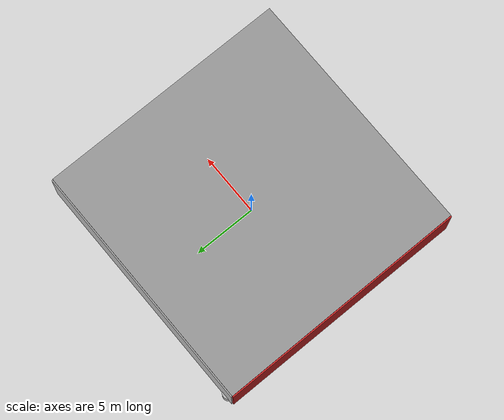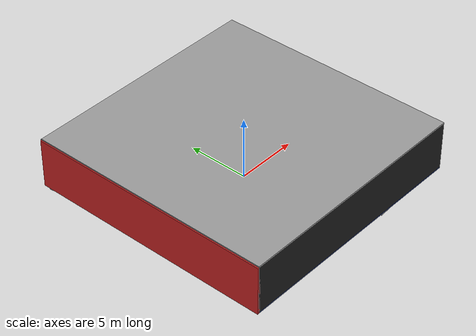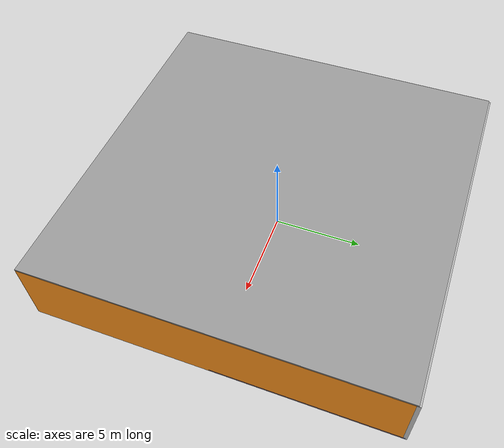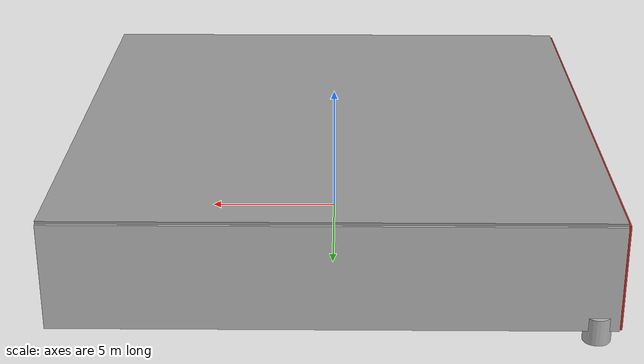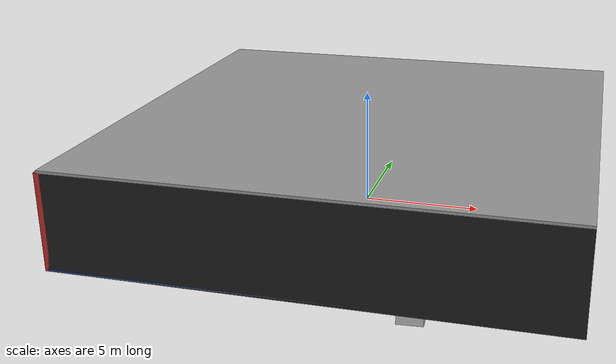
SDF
<sdf version="1.4">
 <world name="default">
  <physics type="ode">
   <max_step_size>0.001</max_step_size>
   <real_time_factor>1</real_time_factor>
   <real_time_update_rate>1000</real_time_update_rate>
   <gravity>0 0 -9.8</gravity>
  </physics>
  <scene><ambient>0.4 0.4 0.4 1</ambient><background>0.7 0.7 0.7 1</background><shadows>1</shadows></scene>
  <model name="Surrounding">
   <static>1</static>
   <link name="Ceiling">
    <collision name="Ceiling_Collision"><geometry><box><size>20 20 0.1</size></box></geometry></collision>
    <visual name="Ceiling_Visual">
     <geometry><box><size>20 20 0.1</size></box></geometry>
     <material>
      <script><uri>file://media/materials/scripts/gazebo.material</uri><name>Gazebo/GreyGradientSky</name></script>
     </material>
    </visual>
    <pose>0 0 4.05 0 0 0</pose>
   </link>
   <link name="Wall_South">
    <collision name="Wall_South_Collision">
     <geometry><box><size>20 0 4</size></box></geometry>
     <pose>0 0 2 0 -0 0</pose>
    </collision>
    <visual name="Wall_South_Visual">
     <pose>0 0 2 0 -0 0</pose>
     <geometry><box><size>20 0 4</size></box></geometry>
     <material>
      <script><uri>file://media/materials/scripts/gazebo.material</uri><name>Gazebo/FlatBlack</name></script>
     </material>
    </visual>
    <velocity_decay><linear>0</linear><angular>0</angular></velocity_decay>
    <pose>0 -10 0 0 -0 0</pose>
   </link>
   <link name="Wall_East">
    <collision name="Wall_21_Collision">
     <geometry><box><size>20 0 4</size></box></geometry>
     <pose>0 0 2 0 -0 0</pose>
    </collision>
    <visual name="Wall_21_Visual">
     <pose>0 0 2 0 -0 0</pose>
     <geometry><box><size>20 0 4</size></box></geometry>
     <material>
      <script><uri>file://media/materials/scripts/gazebo.material</uri><name>Gazebo/Orange</name></script>
     </material>
    </visual>
    <velocity_decay><linear>0</linear><angular>0</angular></velocity_decay>
    <pose>10 0 0 0 -0 1.5708</pose>
   </link>
   <link name="Wall_North">
    <collision name="Wall_22_Collision">
     <geometry><box><size>20 0.2 4</size></box></geometry>
     <pose>0 0 2 0 -0 0</pose>
    </collision>
    <visual name="Wall_22_Visual">
     <pose>0 0 2 0 -0 0</pose>
     <geometry><box><size>20 0.2 4</size></box></geometry>
     <material>
      <script><uri>file://media/materials/scripts/gazebo.material</uri><name>Gazebo/Pioneer2Body</name></script>
     </material>
    </visual>
    <velocity_decay><linear>0</linear><angular>0</angular></velocity_decay>
    <pose>0 10 0 0 -0 0</pose>
   </link>
   <link name="Wall_West">
    <collision name="Wall_23_Collision">
     <geometry><box><size>20 0.2 4</size></box></geometry>
     <pose>0 0 2 0 -0 0</pose>
    </collision>
    <visual name="Wall_23_Visual">
     <pose>0 0 2 0 -0 0</pose>
     <geometry><box><size>20 0.2 4</size></box></geometry>
     <material>
      <script><uri>file://media/materials/scripts/gazebo.material</uri><name>Gazebo/RedBright</name></script>
     </material>
    </visual>
    <velocity_decay><linear>0</linear><angular>0</angular></velocity_decay>
    <pose>-10 0 0 0 0 -1.5708</pose>
   </link>
   <link name="Ground_link">
    <collision name="collision">
     <pose>0 0 .05 0 -0 0</pose>
     <geometry><box><size>20 20 0.1</size></box></geometry>
    </collision>
    <visual name="visual">
     <pose>0 0 .05 0 -0 0</pose>
     <geometry><box><size>20 20 0.1</size></box></geometry>
     <material>
      <script><uri>file://media/materials/scripts/gazebo.material</uri><name>Gazebo/BlueTransparent</name></script>
     </material>
    </visual>
   </link>
   <static>1</static>
  </model>
  <spherical_coordinates>
   <surface_model>EARTH_WGS84</surface_model>
   <latitude_deg>0</latitude_deg>
   <longitude_deg>0</longitude_deg>
   <elevation>0</elevation>
   <heading_deg>0</heading_deg>
  </spherical_coordinates>
  <light name="lightball_0" type="diffuse">
   <diffuse>0.8 0.8 0.8 1</diffuse>
   <specular>0.2 0.2 0.2 1</specular>
   <attenuation>
    <range>100</range>
    <constant>0.7</constant>
    <linear>0.01</linear>
    <quadratic>0.001</quadratic>
   </attenuation>
   <direction>-0.5 0.1 -0.9</direction>
   <pose>1.83602389895 -4.22036500529 0.866452665508 0 0 0</pose>
  </light>
  <light name="lightball_1" type="diffuse">
   <diffuse>0.8 0.8 0.8 1</diffuse>
   <specular>0.2 0.2 0.2 1</specular>
   <attenuation>
    <range>100</range>
    <constant>0.7</constant>
    <linear>0.01</linear>
    <quadratic>0.001</quadratic>
   </attenuation>
   <direction>-0.5 0.1 -0.9</direction>
   <pose>6.8049347799 -3.1728800989 1.0144068488 0 0 0</pose>
  </light>
  <light name="lightball_2" type="diffuse">
   <diffuse>0.8 0.8 0.8 1</diffuse>
   <specular>0.2 0.2 0.2 1</specular>
   <attenuation>
    <range>100</range>
    <constant>0.7</constant>
    <linear>0.01</linear>
    <quadratic>0.001</quadratic>
   </attenuation>
   <direction>-0.5 0.1 -0.9</direction>
   <pose>-3.63372789625 -6.85409655347 1.11917798863 0 0 0</pose>
  </light>
  <light name="lightball_3" type="diffuse">
   <diffuse>0.8 0.8 0.8 1</diffuse>
   <specular>0.2 0.2 0.2 1</specular>
   <attenuation>
    <range>100</range>
    <constant>0.7</constant>
    <linear>0.01</linear>
    <quadratic>0.001</quadratic>
   </attenuation>
   <direction>-0.5 0.1 -0.9</direction>
   <pose>2.25414275785 8.22353843334 1.99400013717 0 0 0</pose>
  </light>
  <light name="lightball_4" type="diffuse">
   <diffuse>0.8 0.8 0.8 1</diffuse>
   <specular>0.2 0.2 0.2 1</specular>
   <attenuation>
    <range>100</range>
    <constant>0.7</constant>
    <linear>0.01</linear>
    <quadratic>0.001</quadratic>
   </attenuation>
   <direction>-0.5 0.1 -0.9</direction>
   <pose>5.28959636121 -6.85313059019 2.42789447796 0 0 0</pose>
  </light>
  <light name="lightball_5" type="diffuse">
   <diffuse>0.8 0.8 0.8 1</diffuse>
   <specular>0.2 0.2 0.2 1</specular>
   <attenuation>
    <range>100</range>
    <constant>0.7</constant>
    <linear>0.01</linear>
    <quadratic>0.001</quadratic>
   </attenuation>
   <direction>-0.5 0.1 -0.9</direction>
   <pose>8.04692885146 -3.82142334396 3.13533496297 0 0 0</pose>
  </light>
  <light name="lightball_6" type="diffuse">
   <diffuse>0.8 0.8 0.8 1</diffuse>
   <specular>0.2 0.2 0.2 1</specular>
   <attenuation>
    <range>100</range>
    <constant>0.7</constant>
    <linear>0.01</linear>
    <quadratic>0.001</quadratic>
   </attenuation>
   <direction>-0.5 0.1 -0.9</direction>
   <pose>9.02614971009 -4.47272170579 0.586321502011 0 0 0</pose>
  </light>
  <light name="lightball_7" type="diffuse">
   <diffuse>0.8 0.8 0.8 1</diffuse>
   <specular>0.2 0.2 0.2 1</specular>
   <attenuation>
    <range>100</range>
    <constant>0.7</constant>
    <linear>0.01</linear>
    <quadratic>0.001</quadratic>
   </attenuation>
   <direction>-0.5 0.1 -0.9</direction>
   <pose>-7.2021250703 7.68652994903 1.48692625627 0 0 0</pose>
  </light>
  <light name="lightball_8" type="diffuse">
   <diffuse>0.8 0.8 0.8 1</diffuse>
   <specular>0.2 0.2 0.2 1</specular>
   <attenuation>
    <range>100</range>
    <constant>0.7</constant>
    <linear>0.01</linear>
    <quadratic>0.001</quadratic>
   </attenuation>
   <direction>-0.5 0.1 -0.9</direction>
   <pose>2.63074837136 -4.74198231062 0.879105099738 0 0 0</pose>
  </light>
  <light name="lightball_9" type="diffuse">
   <diffuse>0.8 0.8 0.8 1</diffuse>
   <specular>0.2 0.2 0.2 1</specular>
   <attenuation>
    <range>100</range>
    <constant>0.7</constant>
    <linear>0.01</linear>
    <quadratic>0.001</quadratic>
   </attenuation>
   <direction>-0.5 0.1 -0.9</direction>
   <pose>6.50649110373 2.66617480786 0.891482103969 0 0 0</pose>
  </light>
  <light name="lightball_10" type="diffuse">
   <diffuse>0.8 0.8 0.8 1</diffuse>
   <specular>0.2 0.2 0.2 1</specular>
   <attenuation>
    <range>100</range>
    <constant>0.7</constant>
    <linear>0.01</linear>
    <quadratic>0.001</quadratic>
   </attenuation>
   <direction>-0.5 0.1 -0.9</direction>
   <pose>-3.41453202803 6.94761910317 2.83268218366 0 0 0</pose>
  </light>
  <include><uri>model://cabinet</uri><pose>-7.78015577301 -1.10389031119 0 0 0 1.70304002338</pose></include>
  <include>
   <uri>model://textured_shapes</uri>
   <pose>-8.4372423203 8.52121785418 0 0 0 0.589198705548</pose>
  </include>
  <include><uri>model://cabinet</uri><pose>-1.68641837381 -2.58808726406 0 0 0 1.04872901269</pose></include>
  <include>
   <uri>model://textured_shapes</uri>
   <pose>-1.31855905869 1.05918277231 0 0 0 1.42188682404</pose>
  </include>
  <include>
   <uri>model://construction_cone</uri>
   <pose>-2.27766745426 4.73263894688 0 0 0 1.16960805237</pose>
  </include>
  <include>
   <uri>model://textured_shapes</uri>
   <pose>3.8694759367 -7.71085911115 0 0 0 0.0623246598708</pose>
  </include>
  <include>
   <uri>model://construction_cone</uri>
   <pose>4.63307400753 7.28846740659 0 0 0 0.807380771993</pose>
  </include>
 </world>
</sdf>

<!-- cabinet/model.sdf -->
<sdf version="1.5">
  <model name="cabinet">
    <static>true</static>
    <link name="cabinet_bottom_plate">
      <inertial>
        <pose>0 0 -1 0 0 0</pose>
        <inertia>
          <ixx>2.050000</ixx>
          <ixy>0</ixy>
          <ixz>0</ixz>
          <iyy>2.050000</iyy>
          <iyz>0</iyz>
          <izz>2.050000</izz>
        </inertia>
        <mass>25.000000</mass>
      </inertial>
      <collision name="cabinet_bottom_plate_geom">
        <pose>0 0 0.010000 0 0 0</pose>
        <geometry>
          <box>
            <size>0.450000 0.450000 0.020000</size>
          </box>
        </geometry>
      </collision>
      <visual name="cabinet_bottom_plate_geom_visual">
        <pose>0 0 0.010000 0 0 0</pose>
        <geometry>
          <box>
            <size>0.450000 0.450000 0.020000</size>
          </box>
        </geometry>
        <material>
          <script>
            <uri>model://media/materials/scripts/gazebo.material</uri>
            <name>Gazebo/Wood</name>
          </script>
        </material>
      </visual>
      <collision name="cabinet_bottom_plate_geom_cabinet_back_plate">
        <pose>0.235000 0 0.510000 0 0 0</pose>
        <geometry>
          <box>
            <size>0.020000 0.450000 1.020000</size>
          </box>
        </geometry>
      </collision>
      <visual name="cabinet_bottom_plate_geom_cabinet_back_plate_visual">
        <pose>0.235000 0 0.510000 0 0 0</pose>
        <geometry>
          <box>
            <size>0.020000 0.450000 1.020000</size>
          </box>
        </geometry>
        <material>
          <script>
            <uri>model://media/materials/scripts/gazebo.material</uri>
            <name>Gazebo/Wood</name>
          </script>
        </material>
      </visual>
      <collision name="cabinet_bottom_plate_geom_cabinet_left_plate">
        <pose>0 0.235000 0.510000 0 0 0</pose>
        <geometry>
          <box>
            <size>0.450000 0.020000 1.020000</size>
          </box>
        </geometry>
      </collision>
      <visual name="cabinet_bottom_plate_geom_cabinet_left_plate_visual">
        <pose>0 0.235000 0.510000 0 0 0</pose>
        <geometry>
          <box>
            <size>0.450000 0.020000 1.020000</size>
          </box>
        </geometry>
        <material>
          <script>
            <uri>model://media/materials/scripts/gazebo.material</uri>
            <name>Gazebo/Wood</name>
          </script>
        </material>
      </visual>
      <collision name="cabinet_bottom_plate_geom_cabinet_middle_plate">
        <pose>0 0 0.510000 0 0 0</pose>
        <geometry>
          <box>
            <size>0.450000 0.450000 0.020000</size>
          </box>
        </geometry>
      </collision>
      <visual name="cabinet_bottom_plate_geom_cabinet_middle_plate_visual">
        <pose>0 0 0.510000 0 0 0</pose>
        <geometry>
          <box>
            <size>0.450000 0.450000 0.020000</size>
          </box>
        </geometry>
        <material>
          <script>
            <uri>model://media/materials/scripts/gazebo.material</uri>
            <name>Gazebo/Wood</name>
          </script>
        </material>
      </visual>
      <collision name="cabinet_bottom_plate_geom_cabinet_right_plate">
        <pose>0 -0.235000 0.510000 0 0 0</pose>
        <geometry>
          <box>
            <size>0.450000 0.020000 1.020000</size>
          </box>
        </geometry>
      </collision>
      <visual name="cabinet_bottom_plate_geom_cabinet_right_plate_visual">
        <pose>0 -0.235000 0.510000 0 0 0</pose>
        <geometry>
          <box>
            <size>0.450000 0.020000 1.020000</size>
          </box>
        </geometry>
        <material>
          <script>
            <uri>model://media/materials/scripts/gazebo.material</uri>
            <name>Gazebo/Wood</name>
          </script>
        </material>
      </visual>
      <collision name="cabinet_bottom_plate_geom_cabinet_top_plate">
        <pose>0 0 1.010000 0 0 0</pose>
        <geometry>
          <box>
            <size>0.450000 0.450000 0.020000</size>
          </box>
        </geometry>
      </collision>
      <visual name="cabinet_bottom_plate_geom_cabinet_top_plate_visual">
        <pose>0 0 1.010000 0 0 0</pose>
        <geometry>
          <box>
            <size>0.450000 0.450000 0.020000</size>
          </box>
        </geometry>
        <material>
          <script>
            <uri>model://media/materials/scripts/gazebo.material</uri>
            <name>Gazebo/Wood</name>
          </script>
        </material>
      </visual>
    </link>
  </model>
</sdf>

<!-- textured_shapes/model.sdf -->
<sdf version="1.6">
  <model name="textured_shapes">
    <pose>0 0 0.5 0 0 0</pose>
    <link name="box">
      <pose>0 -1.5 0 0 0 0</pose>
      <collision name="collision">
        <geometry>
          <box>
            <size>1 1 1</size>
          </box>
        </geometry>
      </collision>
      <visual name="visual">
        <geometry>
          <box>
            <size>1 1 1</size>
          </box>
        </geometry>
        <material>
          <script>
            <uri>model://../model_source/models/textured_shapes/materials/scripts</uri>
            <uri>model://../model_source/models/textured_shapes/materials/textures</uri>
            <name>TexturedShape/Squares</name>
          </script>
        </material>
      </visual>
    </link>
    <link name="sphere">
      <collision name="collision">
        <geometry>
          <sphere>
            <radius>0.5</radius>
          </sphere>
        </geometry>
      </collision>
      <visual name="visual">
        <geometry>
          <sphere>
            <radius>0.5</radius>
          </sphere>
        </geometry>
        <material>
          <script>
            <uri>model://../model_source/models/textured_shapes/materials/scripts</uri>
            <uri>model://../model_source/models/textured_shapes/materials/textures</uri>
            <name>TexturedShape/Squares</name>
          </script>
        </material>
      </visual>
    </link>
    <link name="cylinder">
      <pose>0 1.5 0 0 0 0</pose>
      <collision name="collision">
        <geometry>
          <cylinder>
            <radius>0.5</radius>
            <length>1</length>
          </cylinder>
        </geometry>
      </collision>
      <visual name="visual">
        <geometry>
          <cylinder>
            <radius>0.5</radius>
            <length>1</length>
          </cylinder>
        </geometry>
        <material>
          <script>
            <uri>model://../model_source/models/textured_shapes/materials/scripts</uri>
            <uri>model://../model_source/models/textured_shapes/materials/textures</uri>
            <name>TexturedShape/Squares</name>
          </script>
        </material>
      </visual>
    </link>
  </model>
</sdf>

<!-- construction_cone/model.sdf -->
<sdf version="1.5">
  <model name="Construction Cone">
    <link name="link">
      <collision name="collision">
        <geometry>
          <mesh>
            <scale>10 10 10</scale>
            <uri>file://isr-testbed/construction_cone/meshes/construction_cone.dae</uri>
          </mesh>
        </geometry>
      </collision>
      <visual name="visual">
        <geometry>
          <mesh>
            <scale>10 10 10</scale>
            <uri>file://isr-testbed/construction_cone/meshes/construction_cone.dae</uri>
          </mesh>
        </geometry>
      </visual>
    </link>
  </model>
</sdf>
